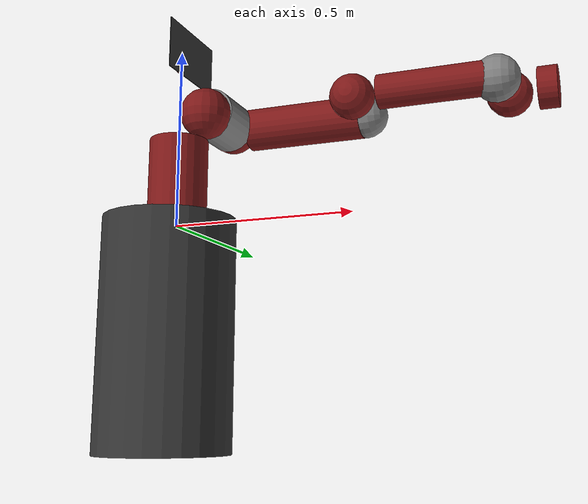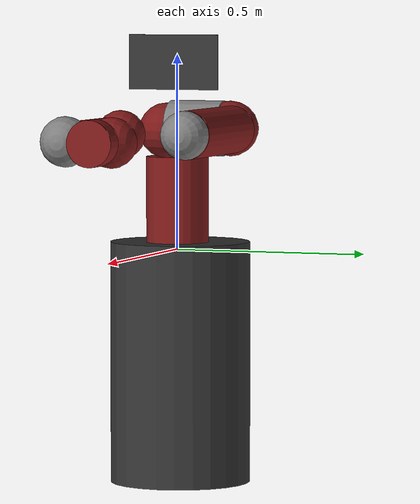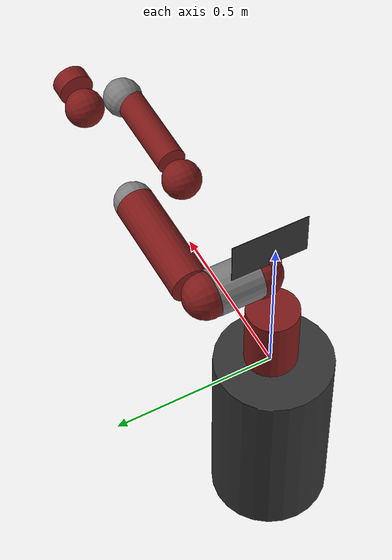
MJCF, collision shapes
<mujoco model="sawyer">
    <actuator>
    	<motor ctrllimited="true" ctrlrange="-80.0 80.0" joint="sawyer_joint_1" name="sawyer_torq_j1"/>
    	<motor ctrllimited="true" ctrlrange="-80.0 80.0" joint="sawyer_joint_2" name="sawyer_torq_j2"/>
    	<motor ctrllimited="true" ctrlrange="-40.0 40.0" joint="sawyer_joint_3" name="sawyer_torq_j3"/>
    	<motor ctrllimited="true" ctrlrange="-40.0 40.0" joint="sawyer_joint_4" name="sawyer_torq_j4"/>
    	<motor ctrllimited="true" ctrlrange="-9.0 9.0" joint="sawyer_joint_5" name="sawyer_torq_j5"/>
    	<motor ctrllimited="true" ctrlrange="-9.0 9.0" joint="sawyer_joint_6" name="sawyer_torq_j6"/>
    	<motor ctrllimited="true" ctrlrange="-9.0 9.0" joint="sawyer_joint_7" name="sawyer_torq_j7"/>
    </actuator>
    <asset>
        <texture type="skybox" builtin="flat" rgb1="1 1 1" rgb2="1 1 1" width="100" height="100" />
    	<mesh file="meshes/base.stl" name="sawyer_base"/>
    	<mesh file="meshes/l0.stl" name="sawyer_l0"/>
    	<mesh file="meshes/head.stl" name="sawyer_head"/>
    	<mesh file="meshes/l1.stl" name="sawyer_l1"/>
    	<mesh file="meshes/l2.stl" name="sawyer_l2"/>
    	<mesh file="meshes/l3.stl" name="sawyer_l3"/>
    	<mesh file="meshes/l4.stl" name="sawyer_l4"/>
    	<mesh file="meshes/l5.stl" name="sawyer_l5"/>
    	<mesh file="meshes/l6.stl" name="sawyer_l6"/>
		<mesh file="meshes/pedestal.stl" name="pedestal"/>
    </asset>
    <worldbody>
    	<body name="sawyer_base" pos="0 0 0">
			<!-- robot view -->
			<camera mode="fixed" name="sawyer_robotview" pos="1.0 0 0.4" quat="0.653 0.271 0.271 0.653"/>
    		<inertial diaginertia="0 0 0" mass="0" pos="0 0 0"/>
            <!-- mount attached here -->
			<body name="pedestal" pos="0 0 0">
				<inertial diaginertia="6.0869 5.81635 4.20915" mass="60.864" pos="0 0 0" quat="0.659267 -0.259505 -0.260945 0.655692"/>
				<geom conaffinity="0" contype="0" group="1" mesh="pedestal" pos="0.26 0.345 -0.91488" quat="0.5 0.5 -0.5 -0.5" rgba="0.2 0.2 0.2 1" type="mesh" name="pedestal_col1"/>
				<geom pos="-0.02 0 -0.29" rgba="0.2 0.2 0.2 1" size="0.18 0.31" type="cylinder" name="pedestal_col2"/>
			</body>
    		<body name="sawyer_right_arm_base_link" pos="0 0 0">
    			<inertial diaginertia="0.00740351 0.00681776 0.00672942" mass="2.0687" pos="-0.0006241 -2.8025e-05 0.065404" quat="-0.209285 0.674441 0.227335 0.670558"/>
    			<geom conaffinity="0" contype="0" group="1" mesh="sawyer_base" type="mesh" name="sawyer_base_vis" rgba="0.5 0.1 0.1 1"/>
    			<geom pos="0 0 0.12" rgba="0.5 0.1 0.1 1" size="0.08 0.12" type="cylinder" name="sawyer_base_col"/>
    			<body name="sawyer_link_0" pos="0 0 0.08">
    				<inertial diaginertia="0.0651588 0.0510944 0.0186218" mass="5.3213" pos="0.024366 0.010969 0.14363" quat="0.894823 0.00899958 -0.170275 0.412573"/>
    				<joint axis="0 0 1" limited="true" name="sawyer_joint_1" pos="0 0 0" range="-3.0503 3.0503"/>
    				<geom conaffinity="0" contype="0" group="1" mesh="sawyer_l0" type="mesh" name="sawyer_link_0_visual" rgba="0.5 0.1 0.1 1"/>
    				<geom pos="0.08 0 0.23" rgba="0.5 0.1 0.1 1" size="0.07" name="sawyer_link_0_collision"/>
    				<body name="sawyer_head" pos="0 0 0.2965">
    					<inertial diaginertia="0.0118334 0.00827089 0.00496574" mass="1.5795" pos="0.0053207 -2.6549e-05 0.1021" quat="0.999993 7.08405e-05 -0.00359857 -0.000626247"/>
    					<!--Don't want to control the head joint so remove it from the kinematic tree-->
    					<geom conaffinity="0" contype="0" group="1" mesh="sawyer_head" type="mesh" name="sawyer_head_visual" rgba="0.5 0.1 0.1 1"/>
    					<geom pos="0 0 0.08" rgba="0.5 0.1 0.1 1" size="0.018" name="sawyer_head_collision"/>
    					<body name="sawyer_screen" pos="0.03 0 0.105" quat="0.5 0.5 0.5 0.5">
    						<inertial diaginertia="1e-08 1e-08 1e-08" mass="0.0001" pos="0 0 0"/>
    						<geom conaffinity="0" contype="0" group="1" size="0.12 0.07 0.001" type="box" name="sawyer_screen_visual" rgba="0.2 0.2 0.2 1"/>
    						<geom rgba="0.2 0.2 0.2 1" size="0.001" name="sawyer_screen_collision"/>
    					</body>
    					<body name="sawyer_head_camera" pos="0.0228027 0 0.216572" quat="0.342813 -0.618449 0.618449 -0.342813">
    						<inertial diaginertia="0 0 0" mass="0" pos="0.0228027 0 0.216572" quat="0.342813 -0.618449 0.618449 -0.342813"/>
    					</body>
    				</body>
    				<body name="sawyer_right_torso_itb" pos="-0.055 0 0.22" quat="0.707107 0 -0.707107 0">
    					<inertial diaginertia="1e-08 1e-08 1e-08" mass="0.0001" pos="0 0 0"/>
    				</body>
    				<body name="sawyer_link_1" pos="0.081 0.05 0.237" quat="0.5 -0.5 0.5 0.5">
    					<inertial diaginertia="0.0224339 0.0221624 0.0097097" mass="4.505" pos="-0.0030849 -0.026811 0.092521" quat="0.424888 0.891987 0.132364 -0.0794296"/>
    					<joint axis="0 0 1" limited="true" name="sawyer_joint_2" pos="0 0 0" range="-3.8095 2.2736"/>
    					<geom conaffinity="0" contype="0" group="1" mesh="sawyer_l1" type="mesh" name="sawyer_link_1_visual" rgba="0.5 0.1 0.1 1"/>
    					<geom pos="0 0 0.1225" rgba="0.5 0.1 0.1 1" size="0.07" name="sawyer_link_1_collision"/>
    					<body name="sawyer_link_2" pos="0 -0.14 0.1425" quat="0.707107 0.707107 0 0">
    						<inertial diaginertia="0.0257928 0.025506 0.00292515" mass="1.745" pos="-0.00016044 -0.014967 0.13582" quat="0.707831 -0.0524761 0.0516007 0.702537"/>
    						<joint axis="0 0 1" limited="true" name="sawyer_joint_3" pos="0 0 0" range="-3.0426 3.0426"/>
    						<geom conaffinity="0" contype="0" group="1" mesh="sawyer_l2" type="mesh" name="sawyer_link_2_visual" rgba="0.5 0.1 0.1 1"/>
    						<geom pos="0 0 0.08" rgba="0.5 0.1 0.1 1" size="0.06 0.17" type="cylinder" name="sawyer_link_2_collision"/>
    						<body name="sawyer_link_3" pos="0 -0.042 0.26" quat="0.707107 -0.707107 0 0">
    							<inertial diaginertia="0.0102404 0.0096997 0.00369622" mass="2.5097" pos="-0.0048135 -0.0281 -0.084154" quat="0.902999 0.385391 -0.0880901 0.168247"/>
    							<joint axis="0 0 1" limited="true" name="sawyer_joint_4" pos="0 0 0" range="-3.0439 3.0439"/>
    							<geom conaffinity="0" contype="0" group="1" mesh="sawyer_l3" type="mesh" name="sawyer_link_3_visual" rgba="0.5 0.1 0.1 1"/>
    							<geom pos="0 -0.01 -0.12" rgba="0.5 0.1 0.1 1" size="0.06" name="sawyer_link_3_collision"/>
    							<body name="sawyer_link_4" pos="0 -0.125 -0.1265" quat="0.707107 0.707107 0 0">
    								<inertial diaginertia="0.0136549 0.0135493 0.00127353" mass="1.1136" pos="-0.0018844 0.0069001 0.1341" quat="0.803612 0.031257 -0.0298334 0.593582"/>
    								<joint axis="0 0 1" limited="true" name="sawyer_joint_5" pos="0 0 0" range="-2.9761 2.9761"/>
    								<geom conaffinity="0" contype="0" group="1" mesh="sawyer_l4" type="mesh" name="sawyer_link_4_visual" rgba="0.5 0.1 0.1 1"/>
    								<geom pos="0 0 0.11" rgba="0.5 0.1 0.1 1" size="0.045 0.15" type="cylinder" name="sawyer_link_4_collision"/>
    								<body name="sawyer_right_arm_itb" pos="-0.055 0 0.075" quat="0.707107 0 -0.707107 0">
    									<inertial diaginertia="1e-08 1e-08 1e-08" mass="0.0001" pos="0 0 0"/>
    								</body>
    								<body name="sawyer_link_5" pos="0 0.031 0.275" quat="0.707107 -0.707107 0 0">
    									<inertial diaginertia="0.00474131 0.00422857 0.00190672" mass="1.5625" pos="0.0061133 -0.023697 0.076416" quat="0.404076 0.9135 0.0473125 0.00158335"/>
    									<joint axis="0 0 1" limited="true" name="sawyer_joint_6" pos="0 0 0" range="-2.9761 2.9761" damping="0.2"/>
    									<geom conaffinity="0" contype="0" group="1" mesh="sawyer_l5" type="mesh" name="sawyer_link_5_visual" rgba="0.5 0.1 0.1 1"/>
    									<geom pos="0 0 0.1" rgba="0.5 0.1 0.1 1" size="0.06" name="sawyer_link_5_collision"/>
    									<body name="sawyer_right_hand_camera" pos="0.039552 -0.033 0.0695" quat="0.707107 0 0.707107 0">
    										<inertial diaginertia="0 0 0" mass="0" pos="0.039552 -0.033 0.0695" quat="0.707107 0 0.707107 0"/>
    									</body>
    									<body name="sawyer_right_wrist" pos="0 0 0.10541" quat="0.707107 0.707107 0 0">
    										<inertial diaginertia="0 0 0" mass="0" pos="0 0 0.10541" quat="0.707107 0.707107 0 0"/>
    									</body>
    									<body name="sawyer_link_6" pos="0 -0.11 0.1053" quat="0.0616248 0.06163 -0.704416 0.704416">
    										<inertial diaginertia="0.000360258 0.000311068 0.000214974" mass="0.3292" pos="-8.0726e-06 0.0085838 -0.0049566" quat="0.479044 0.515636 -0.513069 0.491322"/>
    										<joint axis="0 0 1" limited="true" name="sawyer_joint_7" pos="0 0 0" range="-4.7124 4.7124" damping="0.1"/>
    										<geom conaffinity="0" contype="0" group="1" mesh="sawyer_l6" type="mesh" name="sawyer_link_6_visual" rgba="0.5 0.1 0.1 1"/>
    										<geom pos="0 0.015 -0.01" rgba="0.5 0.1 0.1 1" size="0.055 0.025" type="cylinder" name="sawyer_link_6_collision"/>
    										<body name="sawyer_right_hand" pos="0 0 0.024" quat="0.707105 0 0 0.707108">
												<!-- This camera points out from the eef. -->
                								<camera mode="fixed" name="sawyer_eye_in_hand" pos="0.05 0 0" quat="0 0.707108 0.707108 0" fovy="75"/>
    											<!-- To add gripper -->
    										</body>
    									</body>
    								</body>
    								<body name="sawyer_link_4_2" pos="0 0 0">
    									<inertial diaginertia="1e-08 1e-08 1e-08" mass="1e-08" pos="1e-08 1e-08 1e-08" quat="0.820473 0.339851 -0.17592 0.424708"/>
    									<geom pos="0 0.01 0.26" size="0.06" name="sawyer_link_4_2"/>
    								</body>
    							</body>
    						</body>
    						<body name="sawyer_link_2_2" pos="0 0 0">
    							<inertial diaginertia="1e-08 1e-08 1e-08" mass="1e-08" pos="1e-08 1e-08 1e-08" quat="0.820473 0.339851 -0.17592 0.424708"/>
    							<geom pos="0 0 0.26" size="0.06" name="sawyer_link_2_2"/>
    						</body>
    					</body>
    					<body name="sawyer_link_1_2" pos="0 0 0">
    						<inertial diaginertia="1e-08 1e-08 1e-08" mass="1e-08" pos="1e-08 1e-08 1e-08" quat="0.820473 0.339851 -0.17592 0.424708"/>
    						<geom pos="0 0 0.035" size="0.07 0.07" type="cylinder" name="sawyer_link_1_2"/>
    					</body>
    				</body>
    			</body>
    		</body>
    	</body>
    </worldbody>
</mujoco>
